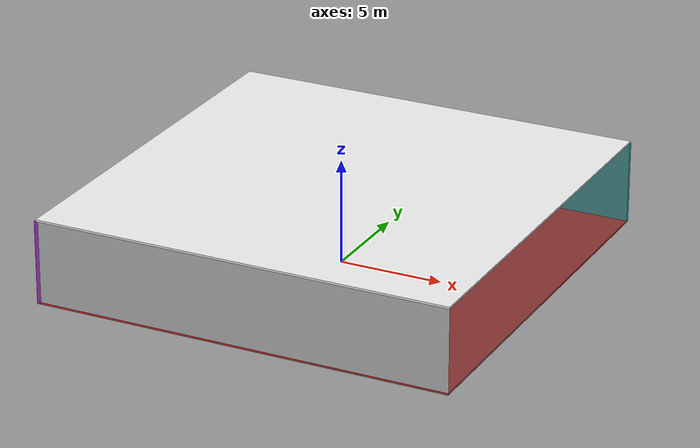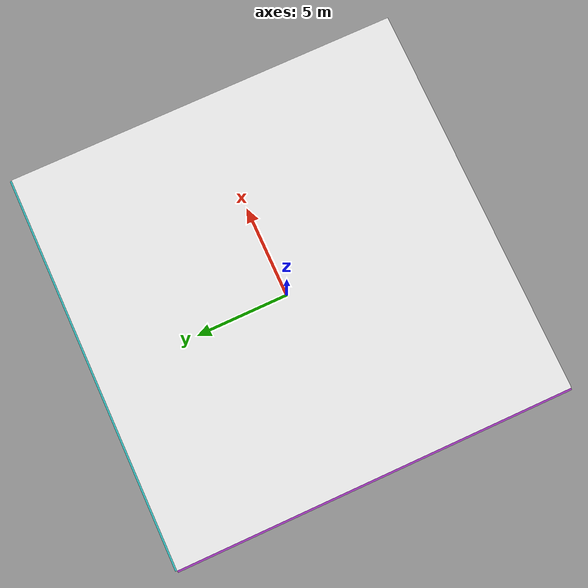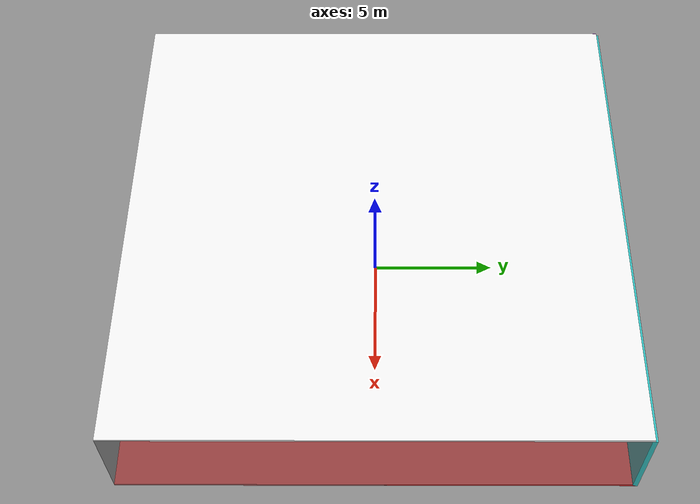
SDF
<sdf version="1.4">
 <world name="default">
  <physics type="ode">
   <max_step_size>0.001</max_step_size>
   <real_time_factor>1</real_time_factor>
   <real_time_update_rate>1000</real_time_update_rate>
   <gravity>0 0 -9.8</gravity>
  </physics>
  <scene><ambient>0.4 0.4 0.4 1</ambient><background>0.7 0.7 0.7 1</background><shadows>1</shadows></scene>
  <model name="Surrounding">
   <static>1</static>
   <link name="Ceiling">
    <collision name="Ceiling_Collision"><geometry><box><size>20 20 0.1</size></box></geometry></collision>
    <visual name="Ceiling_Visual">
     <geometry><box><size>20 20 0.1</size></box></geometry>
     <material>
      <script><uri>file://media/materials/scripts/gazebo.material</uri><name>Gazebo/White</name></script>
     </material>
    </visual>
    <pose>0 0 4.05 0 0 0</pose>
   </link>
   <link name="Wall_South">
    <collision name="Wall_South_Collision">
     <geometry><box><size>20 0 4</size></box></geometry>
     <pose>0 0 2 0 -0 0</pose>
    </collision>
    <visual name="Wall_South_Visual">
     <pose>0 0 2 0 -0 0</pose>
     <geometry><box><size>20 0 4</size></box></geometry>
     <material>
      <script><uri>file://media/materials/scripts/gazebo.material</uri><name>Gazebo/PioneerBody</name></script>
     </material>
    </visual>
    <velocity_decay><linear>0</linear><angular>0</angular></velocity_decay>
    <pose>0 -10 0 0 -0 0</pose>
   </link>
   <link name="Wall_East">
    <collision name="Wall_21_Collision">
     <geometry><box><size>20 0 4</size></box></geometry>
     <pose>0 0 2 0 -0 0</pose>
    </collision>
    <visual name="Wall_21_Visual">
     <pose>0 0 2 0 -0 0</pose>
     <geometry><box><size>20 0 4</size></box></geometry>
     <material>
      <script><uri>file://media/materials/scripts/gazebo.material</uri><name>Gazebo/GreyTransparent</name></script>
     </material>
    </visual>
    <velocity_decay><linear>0</linear><angular>0</angular></velocity_decay>
    <pose>10 0 0 0 -0 1.5708</pose>
   </link>
   <link name="Wall_North">
    <collision name="Wall_22_Collision">
     <geometry><box><size>20 0.2 4</size></box></geometry>
     <pose>0 0 2 0 -0 0</pose>
    </collision>
    <visual name="Wall_22_Visual">
     <pose>0 0 2 0 -0 0</pose>
     <geometry><box><size>20 0.2 4</size></box></geometry>
     <material>
      <script>
       <uri>file://media/materials/scripts/gazebo.material</uri>
       <name>Gazebo/TurquoiseGlowOutline</name>
      </script>
     </material>
    </visual>
    <velocity_decay><linear>0</linear><angular>0</angular></velocity_decay>
    <pose>0 10 0 0 -0 0</pose>
   </link>
   <link name="Wall_West">
    <collision name="Wall_23_Collision">
     <geometry><box><size>20 0.2 4</size></box></geometry>
     <pose>0 0 2 0 -0 0</pose>
    </collision>
    <visual name="Wall_23_Visual">
     <pose>0 0 2 0 -0 0</pose>
     <geometry><box><size>20 0.2 4</size></box></geometry>
     <material>
      <script><uri>file://media/materials/scripts/gazebo.material</uri><name>Gazebo/Purple</name></script>
     </material>
    </visual>
    <velocity_decay><linear>0</linear><angular>0</angular></velocity_decay>
    <pose>-10 0 0 0 0 -1.5708</pose>
   </link>
   <link name="Ground_link">
    <collision name="collision">
     <pose>0 0 .05 0 -0 0</pose>
     <geometry><box><size>20 20 0.1</size></box></geometry>
    </collision>
    <visual name="visual">
     <pose>0 0 .05 0 -0 0</pose>
     <geometry><box><size>20 20 0.1</size></box></geometry>
     <material>
      <script><uri>file://media/materials/scripts/gazebo.material</uri><name>Gazebo/Red</name></script>
     </material>
    </visual>
   </link>
   <static>1</static>
  </model>
  <spherical_coordinates>
   <surface_model>EARTH_WGS84</surface_model>
   <latitude_deg>0</latitude_deg>
   <longitude_deg>0</longitude_deg>
   <elevation>0</elevation>
   <heading_deg>0</heading_deg>
  </spherical_coordinates>
  <light name="lightball_0" type="diffuse">
   <diffuse>0.8 0.8 0.8 1</diffuse>
   <specular>0.2 0.2 0.2 1</specular>
   <attenuation>
    <range>100</range>
    <constant>0.7</constant>
    <linear>0.01</linear>
    <quadratic>0.001</quadratic>
   </attenuation>
   <direction>-0.5 0.1 -0.9</direction>
   <pose>1.05685662423 1.9873301589 2.00450288372 0 0 0</pose>
  </light>
  <light name="lightball_1" type="diffuse">
   <diffuse>0.8 0.8 0.8 1</diffuse>
   <specular>0.2 0.2 0.2 1</specular>
   <attenuation>
    <range>100</range>
    <constant>0.7</constant>
    <linear>0.01</linear>
    <quadratic>0.001</quadratic>
   </attenuation>
   <direction>-0.5 0.1 -0.9</direction>
   <pose>4.8921815163 8.3905251746 0.64527216645 0 0 0</pose>
  </light>
  <light name="lightball_2" type="diffuse">
   <diffuse>0.8 0.8 0.8 1</diffuse>
   <specular>0.2 0.2 0.2 1</specular>
   <attenuation>
    <range>100</range>
    <constant>0.7</constant>
    <linear>0.01</linear>
    <quadratic>0.001</quadratic>
   </attenuation>
   <direction>-0.5 0.1 -0.9</direction>
   <pose>5.70585616778 -1.21168152594 3.71297942094 0 0 0</pose>
  </light>
  <include><uri>model://cabinet</uri><pose>-7.11004208244 4.78698561453 0 0 0 0.884177897442</pose></include>
  <include><uri>model://cabinet</uri><pose>-8.07683452653 6.98283978309 0 0 0 0.769436184908</pose></include>
  <include><uri>model://cabinet</uri><pose>-3.96842152286 -4.48284389845 0 0 0 1.08445301089</pose></include>
  <include><uri>model://cabinet</uri><pose>-4.5125477383 4.43613923083 0 0 0 1.833302904</pose></include>
 </world>
</sdf>

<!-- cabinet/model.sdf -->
<sdf version="1.5">
  <model name="cabinet">
    <static>true</static>
    <link name="cabinet_bottom_plate">
      <inertial>
        <pose>0 0 -1 0 0 0</pose>
        <inertia>
          <ixx>2.050000</ixx>
          <ixy>0</ixy>
          <ixz>0</ixz>
          <iyy>2.050000</iyy>
          <iyz>0</iyz>
          <izz>2.050000</izz>
        </inertia>
        <mass>25.000000</mass>
      </inertial>
      <collision name="cabinet_bottom_plate_geom">
        <pose>0 0 0.010000 0 0 0</pose>
        <geometry>
          <box>
            <size>0.450000 0.450000 0.020000</size>
          </box>
        </geometry>
      </collision>
      <visual name="cabinet_bottom_plate_geom_visual">
        <pose>0 0 0.010000 0 0 0</pose>
        <geometry>
          <box>
            <size>0.450000 0.450000 0.020000</size>
          </box>
        </geometry>
        <material>
          <script>
            <uri>model://media/materials/scripts/gazebo.material</uri>
            <name>Gazebo/Wood</name>
          </script>
        </material>
      </visual>
      <collision name="cabinet_bottom_plate_geom_cabinet_back_plate">
        <pose>0.235000 0 0.510000 0 0 0</pose>
        <geometry>
          <box>
            <size>0.020000 0.450000 1.020000</size>
          </box>
        </geometry>
      </collision>
      <visual name="cabinet_bottom_plate_geom_cabinet_back_plate_visual">
        <pose>0.235000 0 0.510000 0 0 0</pose>
        <geometry>
          <box>
            <size>0.020000 0.450000 1.020000</size>
          </box>
        </geometry>
        <material>
          <script>
            <uri>model://media/materials/scripts/gazebo.material</uri>
            <name>Gazebo/Wood</name>
          </script>
        </material>
      </visual>
      <collision name="cabinet_bottom_plate_geom_cabinet_left_plate">
        <pose>0 0.235000 0.510000 0 0 0</pose>
        <geometry>
          <box>
            <size>0.450000 0.020000 1.020000</size>
          </box>
        </geometry>
      </collision>
      <visual name="cabinet_bottom_plate_geom_cabinet_left_plate_visual">
        <pose>0 0.235000 0.510000 0 0 0</pose>
        <geometry>
          <box>
            <size>0.450000 0.020000 1.020000</size>
          </box>
        </geometry>
        <material>
          <script>
            <uri>model://media/materials/scripts/gazebo.material</uri>
            <name>Gazebo/Wood</name>
          </script>
        </material>
      </visual>
      <collision name="cabinet_bottom_plate_geom_cabinet_middle_plate">
        <pose>0 0 0.510000 0 0 0</pose>
        <geometry>
          <box>
            <size>0.450000 0.450000 0.020000</size>
          </box>
        </geometry>
      </collision>
      <visual name="cabinet_bottom_plate_geom_cabinet_middle_plate_visual">
        <pose>0 0 0.510000 0 0 0</pose>
        <geometry>
          <box>
            <size>0.450000 0.450000 0.020000</size>
          </box>
        </geometry>
        <material>
          <script>
            <uri>model://media/materials/scripts/gazebo.material</uri>
            <name>Gazebo/Wood</name>
          </script>
        </material>
      </visual>
      <collision name="cabinet_bottom_plate_geom_cabinet_right_plate">
        <pose>0 -0.235000 0.510000 0 0 0</pose>
        <geometry>
          <box>
            <size>0.450000 0.020000 1.020000</size>
          </box>
        </geometry>
      </collision>
      <visual name="cabinet_bottom_plate_geom_cabinet_right_plate_visual">
        <pose>0 -0.235000 0.510000 0 0 0</pose>
        <geometry>
          <box>
            <size>0.450000 0.020000 1.020000</size>
          </box>
        </geometry>
        <material>
          <script>
            <uri>model://media/materials/scripts/gazebo.material</uri>
            <name>Gazebo/Wood</name>
          </script>
        </material>
      </visual>
      <collision name="cabinet_bottom_plate_geom_cabinet_top_plate">
        <pose>0 0 1.010000 0 0 0</pose>
        <geometry>
          <box>
            <size>0.450000 0.450000 0.020000</size>
          </box>
        </geometry>
      </collision>
      <visual name="cabinet_bottom_plate_geom_cabinet_top_plate_visual">
        <pose>0 0 1.010000 0 0 0</pose>
        <geometry>
          <box>
            <size>0.450000 0.450000 0.020000</size>
          </box>
        </geometry>
        <material>
          <script>
            <uri>model://media/materials/scripts/gazebo.material</uri>
            <name>Gazebo/Wood</name>
          </script>
        </material>
      </visual>
    </link>
  </model>
</sdf>
